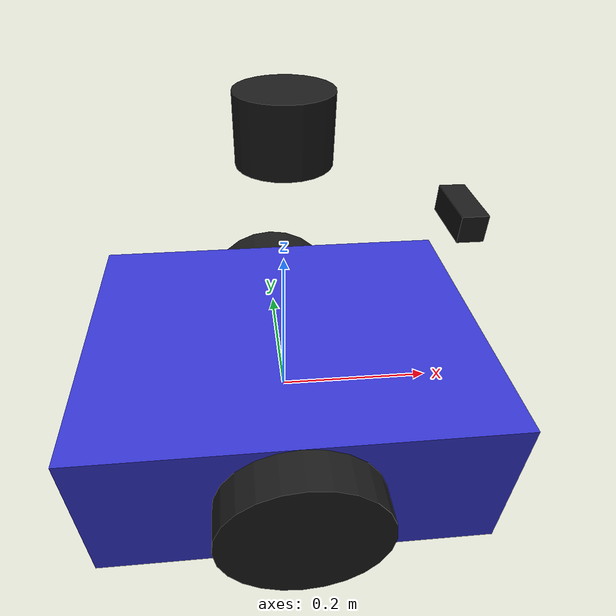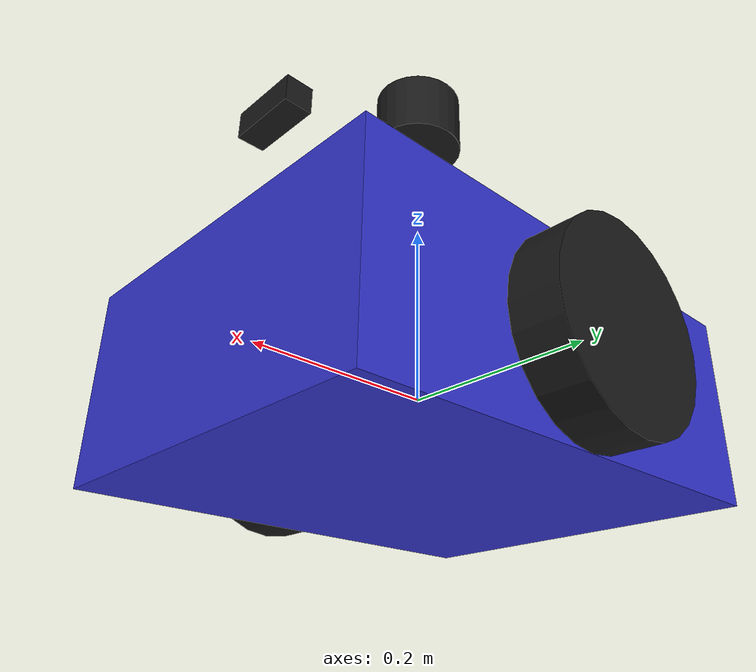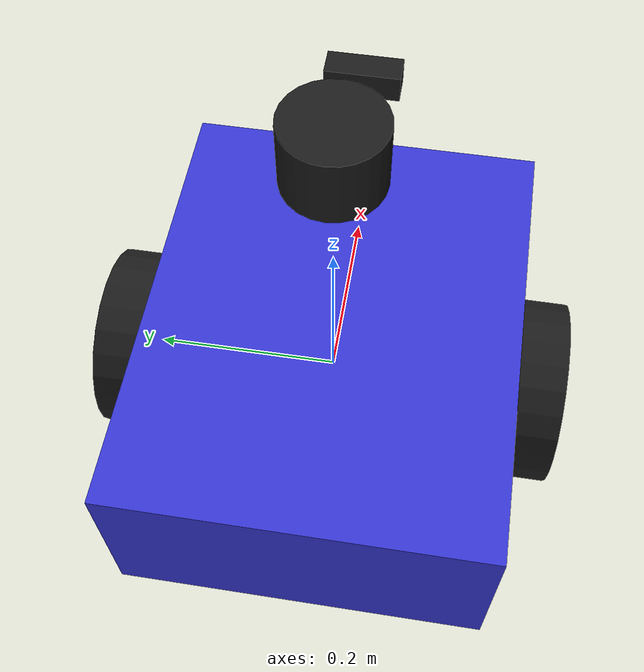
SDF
<?xml version="1.0" ?>
<sdf version="1.9">
  <model name="robot_with_sensors">

    <!-- BASE LINK                                 -->

    <link name="base_link">
      <pose>0 0 0 0 0 0</pose>

      <inertial>
        <mass>15.0</mass>
        <inertia>
          <ixx>0.2833</ixx>
          <iyy>0.3583</iyy>
          <izz>0.5416</izz>
          <ixy>0</ixy>
          <ixz>0</ixz>
          <iyz>0</iyz>
        </inertia>
      </inertial>

      <collision name="collision">
        <geometry>
          <box>
            <size>0.5 0.4 0.2</size>
          </box>
        </geometry>
        <surface>
          <friction>
            <ode>
              <mu>0.8</mu>
              <mu2>0.8</mu2>
            </ode>
          </friction>
          <contact>
            <ode>
              <kp>1e6</kp>
              <kd>1e3</kd>
              <min_depth>0.001</min_depth>
              <max_vel>0.01</max_vel>
            </ode>
          </contact>
        </surface>
      </collision>

      <visual name="visual">
        <geometry>
          <box>
            <size>0.5 0.4 0.2</size>
          </box>
        </geometry>
        <material>
          <ambient>0.2 0.2 0.8 1</ambient>
          <diffuse>0.2 0.2 0.8 1</diffuse>
        </material>
      </visual>

      <!-- IMU SENSOR with realistic noise           -->

      <sensor name="imu_sensor" type="imu">
        <always_on>1</always_on>
        <update_rate>100</update_rate>
        <visualize>true</visualize>
        <topic>imu</topic>

        <imu>
          <!-- Angular velocity (gyroscope) noise -->
          <angular_velocity>
            <x>
              <noise type="gaussian">
                <mean>0.0</mean>
                <stddev>0.009</stddev>  <!-- 0.5 deg/s -->
                <bias_mean>0.00008726646</bias_mean>  <!-- 0.005 deg/s bias -->
                <bias_stddev>0.00008726646</bias_stddev>
                <dynamic_bias_stddev>0.00004363323</dynamic_bias_stddev>  <!-- Bias drift -->
                <dynamic_bias_correlation_time>1000.0</dynamic_bias_correlation_time>
              </noise>
            </x>
            <y>
              <noise type="gaussian">
                <mean>0.0</mean>
                <stddev>0.009</stddev>
                <bias_mean>0.00008726646</bias_mean>
                <bias_stddev>0.00008726646</bias_stddev>
                <dynamic_bias_stddev>0.00004363323</dynamic_bias_stddev>
                <dynamic_bias_correlation_time>1000.0</dynamic_bias_correlation_time>
              </noise>
            </y>
            <z>
              <noise type="gaussian">
                <mean>0.0</mean>
                <stddev>0.009</stddev>
                <bias_mean>0.00008726646</bias_mean>
                <bias_stddev>0.00008726646</bias_stddev>
                <dynamic_bias_stddev>0.00004363323</dynamic_bias_stddev>
                <dynamic_bias_correlation_time>1000.0</dynamic_bias_correlation_time>
              </noise>
            </z>
          </angular_velocity>

          <!-- Linear acceleration (accelerometer) noise -->
          <linear_acceleration>
            <x>
              <noise type="gaussian">
                <mean>0.0</mean>
                <stddev>0.017</stddev>
                <bias_mean>0.05</bias_mean>
                <bias_stddev>0.01</bias_stddev>
                <dynamic_bias_stddev>0.005</dynamic_bias_stddev>
                <dynamic_bias_correlation_time>300.0</dynamic_bias_correlation_time>
              </noise>
            </x>
            <y>
              <noise type="gaussian">
                <mean>0.0</mean>
                <stddev>0.017</stddev>
                <bias_mean>0.05</bias_mean>
                <bias_stddev>0.01</bias_stddev>
                <dynamic_bias_stddev>0.005</dynamic_bias_stddev>
                <dynamic_bias_correlation_time>300.0</dynamic_bias_correlation_time>
              </noise>
            </y>
            <z>
              <noise type="gaussian">
                <mean>0.0</mean>
                <stddev>0.017</stddev>
                <bias_mean>0.05</bias_mean>
                <bias_stddev>0.01</bias_stddev>
                <dynamic_bias_stddev>0.005</dynamic_bias_stddev>
                <dynamic_bias_correlation_time>300.0</dynamic_bias_correlation_time>
              </noise>
            </z>
          </linear_acceleration>
        </imu>
      </sensor>

    </link>

    <!-- LIDAR LINK AND SENSOR                     -->

    <link name="lidar_link">
      <pose>0 0 0.35 0 0 0</pose>

      <inertial>
        <mass>0.2</mass>
        <inertia>
          <ixx>0.0001</ixx>
          <iyy>0.0001</iyy>
          <izz>0.00005</izz>
        </inertia>
      </inertial>

      <collision name="collision">
        <geometry>
          <cylinder>
            <radius>0.05</radius>
            <length>0.07</length>
          </cylinder>
        </geometry>
      </collision>

      <visual name="visual">
        <geometry>
          <cylinder>
            <radius>0.05</radius>
            <length>0.07</length>
          </cylinder>
        </geometry>
        <material>
          <ambient>0.1 0.1 0.1 1</ambient>
          <diffuse>0.1 0.1 0.1 1</diffuse>
        </material>
      </visual>

      <!-- LIDAR SENSOR with realistic noise         -->

      <sensor name="lidar" type="gpu_lidar">
        <topic>scan</topic>
        <update_rate>10</update_rate>
        <lidar>
          <scan>
            <horizontal>
              <samples>360</samples>
              <resolution>1</resolution>
              <min_angle>-3.14159</min_angle>
              <max_angle>3.14159</max_angle>
            </horizontal>
          </scan>
          <range>
            <min>0.12</min>
            <max>10.0</max>
            <resolution>0.015</resolution>
          </range>

          <!-- Range noise modeling -->
          <noise>
            <type>gaussian</type>
            <mean>0.0</mean>
            <stddev>0.02</stddev>  <!-- 2cm standard deviation -->
          </noise>
        </lidar>
        <always_on>1</always_on>
        <visualize>true</visualize>

        <!-- Additional noise plugin for dropouts and outliers -->
        <plugin
          filename="ignition-gazebo-lidar-noise-plugin"
          name="ignition::gazebo::systems::LidarNoise">
          <dropout_probability>0.02</dropout_probability>  <!-- 2% dropout rate -->
          <outlier_probability>0.01</outlier_probability>  <!-- 1% outliers -->
          <outlier_range_min>0.5</outlier_range_min>
          <outlier_range_max>9.5</outlier_range_max>
        </plugin>
      </sensor>

    </link>

    <joint name="lidar_joint" type="fixed">
      <parent>base_link</parent>
      <child>lidar_link</child>
    </joint>

    <!-- CAMERA LINK AND SENSOR                    -->

    <link name="camera_link">
      <pose>0.2 0 0.25 0 0 0</pose>

      <inertial>
        <mass>0.15</mass>
        <inertia>
          <ixx>0.00001</ixx>
          <iyy>0.00001</iyy>
          <izz>0.00001</izz>
        </inertia>
      </inertial>

      <collision name="collision">
        <geometry>
          <box>
            <size>0.03 0.08 0.03</size>
          </box>
        </geometry>
      </collision>

      <visual name="visual">
        <geometry>
          <box>
            <size>0.03 0.08 0.03</size>
          </box>
        </geometry>
        <material>
          <ambient>0.1 0.1 0.1 1</ambient>
          <diffuse>0.1 0.1 0.1 1</diffuse>
        </material>
      </visual>

      <!-- CAMERA SENSOR with realistic noise        -->

      <sensor name="camera" type="camera">
        <topic>camera/image</topic>
        <update_rate>30</update_rate>
        <camera>
          <horizontal_fov>1.047</horizontal_fov>  <!-- 60 degrees -->
          <image>
            <width>640</width>
            <height>480</height>
            <format>R8G8B8</format>
          </image>
          <clip>
            <near>0.1</near>
            <far>100</far>
          </clip>

          <!-- Camera noise modeling -->
          <noise>
            <type>gaussian</type>
            <mean>0.0</mean>
            <stddev>0.007</stddev>  <!-- Visual noise -->
          </noise>

          <!-- Lens distortion -->
          <distortion>
            <k1>-0.02</k1>
            <k2>0.01</k2>
            <k3>-0.001</k3>
            <p1>0.001</p1>
            <p2>-0.001</p2>
            <center>0.5 0.5</center>
          </distortion>

          <!-- Motion blur effect -->
          <lens>
            <type>stereographic</type>
            <scale_to_hfov>true</scale_to_hfov>
            <cutoff_angle>1.5708</cutoff_angle>
            <env_texture_size>256</env_texture_size>
          </lens>
        </camera>
        <always_on>1</always_on>
        <visualize>true</visualize>
      </sensor>

      <!-- DEPTH CAMERA SENSOR                       -->

      <sensor name="depth_camera" type="depth_camera">
        <topic>camera/depth</topic>
        <update_rate>30</update_rate>
        <camera>
          <horizontal_fov>1.047</horizontal_fov>
          <image>
            <width>640</width>
            <height>480</height>
            <format>R_FLOAT32</format>
          </image>
          <clip>
            <near>0.1</near>
            <far>10</far>
          </clip>

          <!-- Depth noise modeling -->
          <noise>
            <type>gaussian</type>
            <mean>0.0</mean>
            <stddev>0.01</stddev>  <!-- 1cm depth noise -->
          </noise>
        </camera>
        <always_on>1</always_on>
      </sensor>

    </link>

    <joint name="camera_joint" type="fixed">
      <parent>base_link</parent>
      <child>camera_link</child>
    </joint>

    <!-- WHEELS - Left and Right                   -->

    <link name="left_wheel">
      <pose>0 0.225 0 -1.5707 0 0</pose>

      <inertial>
        <mass>0.8</mass>
        <inertia>
          <ixx>0.001</ixx>
          <iyy>0.004</iyy>
          <izz>0.001</izz>
        </inertia>
      </inertial>

      <collision name="collision">
        <geometry>
          <cylinder>
            <radius>0.1</radius>
            <length>0.05</length>
          </cylinder>
        </geometry>
        <surface>
          <friction>
            <ode>
              <mu>1.2</mu>
              <mu2>1.2</mu2>
            </ode>
          </friction>
          <contact>
            <ode>
              <kp>1e6</kp>
              <kd>1e3</kd>
              <min_depth>0.0005</min_depth>
            </ode>
          </contact>
        </surface>
      </collision>

      <visual name="visual">
        <geometry>
          <cylinder>
            <radius>0.1</radius>
            <length>0.05</length>
          </cylinder>
        </geometry>
        <material>
          <ambient>0.1 0.1 0.1 1</ambient>
          <diffuse>0.1 0.1 0.1 1</diffuse>
        </material>
      </visual>
    </link>

    <joint name="left_wheel_joint" type="revolute">
      <parent>base_link</parent>
      <child>left_wheel</child>
      <axis>
        <xyz>0 0 1</xyz>
        <limit>
          <lower>-1.79769e+308</lower>
          <upper>1.79769e+308</upper>
        </limit>
        <dynamics>
          <damping>0.1</damping>
          <friction>0.1</friction>
        </dynamics>
      </axis>
    </joint>

    <link name="right_wheel">
      <pose>0 -0.225 0 -1.5707 0 0</pose>

      <inertial>
        <mass>0.8</mass>
        <inertia>
          <ixx>0.001</ixx>
          <iyy>0.004</iyy>
          <izz>0.001</izz>
        </inertia>
      </inertial>

      <collision name="collision">
        <geometry>
          <cylinder>
            <radius>0.1</radius>
            <length>0.05</length>
          </cylinder>
        </geometry>
        <surface>
          <friction>
            <ode>
              <mu>1.2</mu>
              <mu2>1.2</mu2>
            </ode>
          </friction>
          <contact>
            <ode>
              <kp>1e6</kp>
              <kd>1e3</kd>
              <min_depth>0.0005</min_depth>
            </ode>
          </contact>
        </surface>
      </collision>

      <visual name="visual">
        <geometry>
          <cylinder>
            <radius>0.1</radius>
            <length>0.05</length>
          </cylinder>
        </geometry>
        <material>
          <ambient>0.1 0.1 0.1 1</ambient>
          <diffuse>0.1 0.1 0.1 1</diffuse>
        </material>
      </visual>
    </link>

    <joint name="right_wheel_joint" type="revolute">
      <parent>base_link</parent>
      <child>right_wheel</child>
      <axis>
        <xyz>0 0 1</xyz>
        <limit>
          <lower>-1.79769e+308</lower>
          <upper>1.79769e+308</upper>
        </limit>
        <dynamics>
          <damping>0.1</damping>
          <friction>0.1</friction>
        </dynamics>
      </axis>
    </joint>

    <!-- CASTER WHEEL                              -->

    <link name="caster_wheel">
      <pose>-0.2 0 -0.05 0 0 0</pose>

      <inertial>
        <mass>0.3</mass>
        <inertia>
          <ixx>0.0003</ixx>
          <iyy>0.0003</iyy>
          <izz>0.0003</izz>
        </inertia>
      </inertial>

      <collision name="collision">
        <geometry>
          <sphere>
            <radius>0.05</radius>
          </sphere>
        </geometry>
        <surface>
          <friction>
            <ode>
              <mu>0.05</mu>
              <mu2>0.05</mu2>
            </ode>
          </friction>
        </surface>
      </collision>

      <visual name="visual">
        <geometry>
          <sphere>
            <radius>0.05</radius>
          </sphere>
        </geometry>
        <material>
          <ambient>0.5 0.5 0.5 1</ambient>
          <diffuse>0.5 0.5 0.5 1</diffuse>
        </material>
      </visual>
    </link>

    <joint name="caster_joint" type="fixed">
      <parent>base_link</parent>
      <child>caster_wheel</child>
    </joint>

    <!-- DIFFERENTIAL DRIVE PLUGIN                 -->

    <plugin
      filename="ignition-gazebo-diff-drive-system"
      name="ignition::gazebo::systems::DiffDrive">
      <left_joint>left_wheel_joint</left_joint>
      <right_joint>right_wheel_joint</right_joint>
      <wheel_separation>0.45</wheel_separation>
      <wheel_radius>0.1</wheel_radius>
      <odom_publish_frequency>50</odom_publish_frequency>
      <topic>cmd_vel</topic>
      <odom_topic>odom</odom_topic>
      <tf_topic>tf</tf_topic>
      <frame_id>odom</frame_id>
      <child_frame_id>base_link</child_frame_id>
    </plugin>

  </model>
</sdf>
